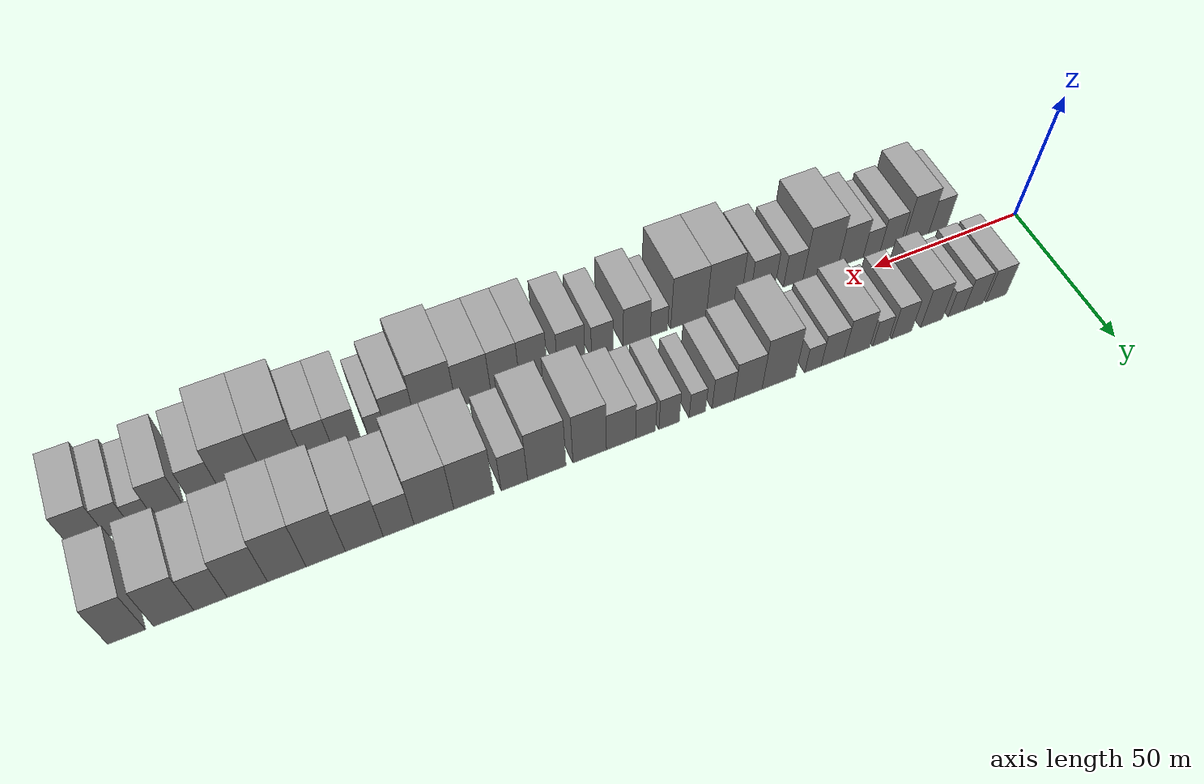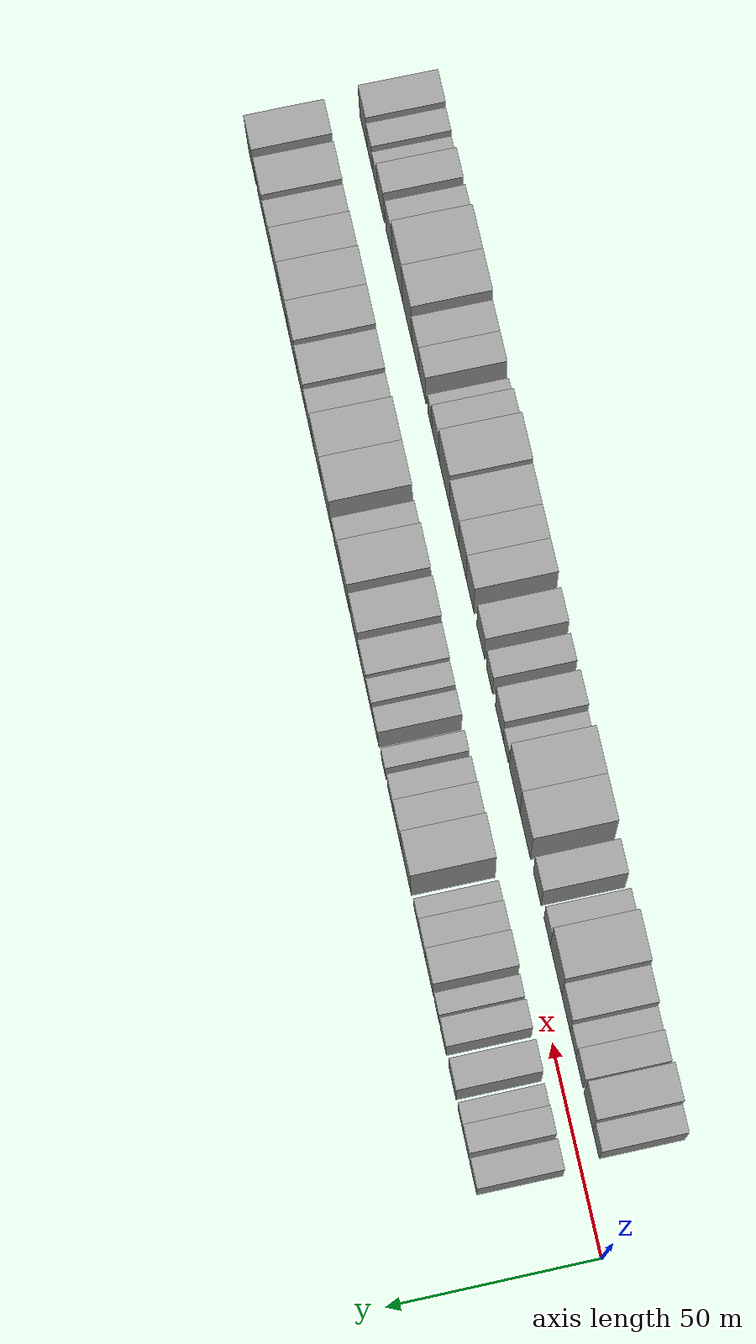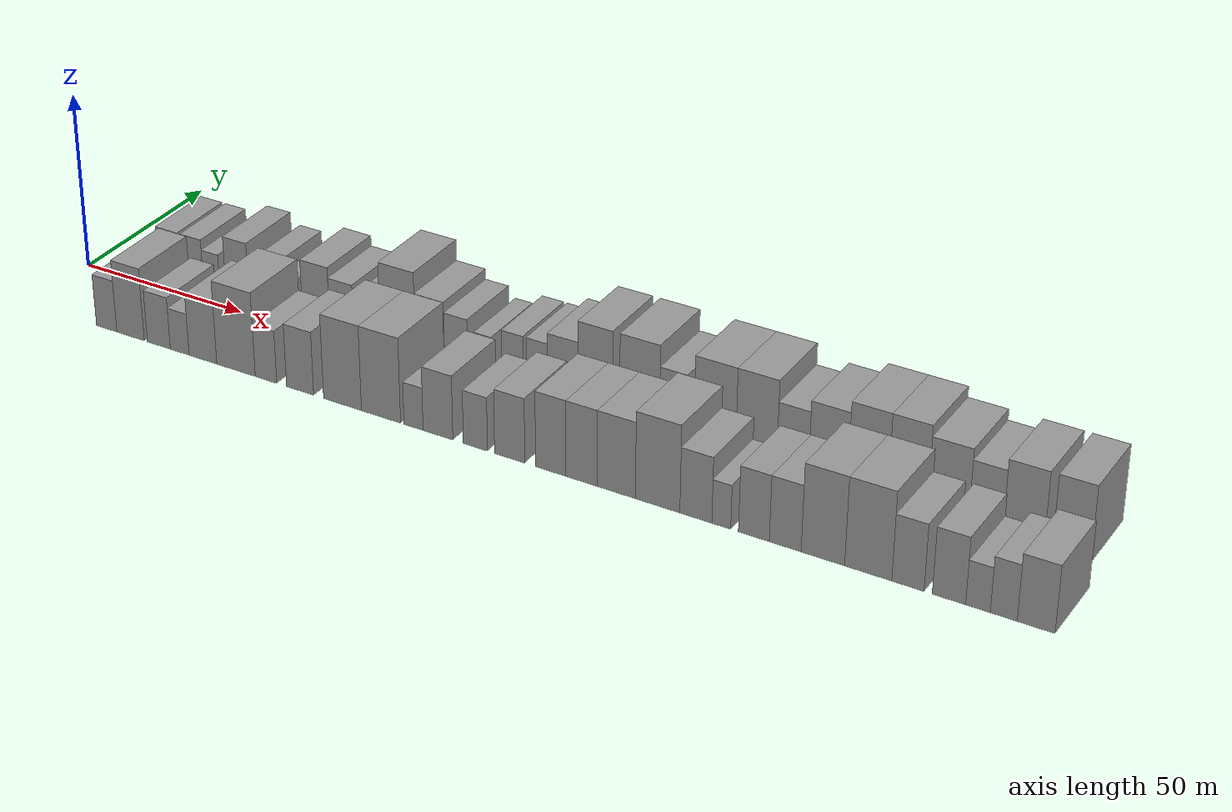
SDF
<sdf version="1.6">
 <world name="default">
  <scene>
   <sky><clouds><speed>12</speed></clouds></sky>
   <ambient>0.4 0.4 0.4 1</ambient>
   <background>0.7 0.7 0.7 1</background>
   <shadows>1</shadows>
  </scene>
  <gravity>0 0 -9.8066</gravity>
  <magnetic_field>6e-06 2.3e-05 -4.2e-05</magnetic_field>
  <physics default="0" name="default_physics" type="ode">
   <ode>
    <solver>
     <type>quick</type>
     <iters>10</iters>
     <sor>1.0</sor>
     <use_dynamic_moi_rescaling>0</use_dynamic_moi_rescaling>
    </solver>
    <constraints>
     <cfm>0</cfm>
     <erp>0.2</erp>
     <contact_max_correcting_vel>100</contact_max_correcting_vel>
     <contact_surface_layer>0.001</contact_surface_layer>
    </constraints>
   </ode>
   <max_step_size>0.004</max_step_size>
   <real_time_factor>1</real_time_factor>
   <real_time_update_rate>250</real_time_update_rate>
  </physics>
  <light name="sun" type="directional">
   <pose>0 0 10 0 0 0</pose>
   <diffuse>0.8 0.8 0.8 1</diffuse>
   <specular>0.2 0.2 0.2 1</specular>
   <attenuation>
    <range>1000</range>
    <constant>0.9</constant>
    <linear>0.01</linear>
    <quadratic>0.001</quadratic>
   </attenuation>
   <direction>-0.5 0.1 -0.9</direction>
  </light>
  <model name="building_1">
   <static>1</static>
   <pose>23.5360 14.5000 0 0.000000 0.000000 1.570796</pose>
   <link name="link">
    <pose>0 0 7.50 0 0 0</pose>
    <collision name="collision"><geometry><box><size>20.0000 7.0721 15.0000</size></box></geometry></collision>
    <visual name="visual">
     <cast_shadows>0</cast_shadows>
     <geometry><box><size>20.0000 7.0721 15.0000</size></box></geometry>
     <material>
      <script>
       <uri>model://grey_wall/materials/scripts</uri>
       <uri>model://grey_wall/materials/textures</uri>
       <name>vrc/grey_wall</name>
      </script>
     </material>
    </visual>
   </link>
  </model>
  <model name="building_2">
   <static>1</static>
   <pose>31.3836 14.5000 0 0.000000 0.000000 1.570796</pose>
   <link name="link">
    <pose>0 0 7.50 0 0 0</pose>
    <collision name="collision"><geometry><box><size>20.0000 6.6231 15.0000</size></box></geometry></collision>
    <visual name="visual">
     <cast_shadows>0</cast_shadows>
     <geometry><box><size>20.0000 6.6231 15.0000</size></box></geometry>
     <material>
      <script>
       <uri>model://grey_wall/materials/scripts</uri>
       <uri>model://grey_wall/materials/textures</uri>
       <name>vrc/grey_wall</name>
      </script>
     </material>
    </visual>
   </link>
  </model>
  <model name="building_3">
   <static>1</static>
   <pose>37.3667 14.5000 0 0.000000 0.000000 1.570796</pose>
   <link name="link">
    <pose>0 0 6.00 0 0 0</pose>
    <collision name="collision"><geometry><box><size>20.0000 5.3431 12.0000</size></box></geometry></collision>
    <visual name="visual">
     <cast_shadows>0</cast_shadows>
     <geometry><box><size>20.0000 5.3431 12.0000</size></box></geometry>
     <material>
      <script>
       <uri>model://grey_wall/materials/scripts</uri>
       <uri>model://grey_wall/materials/textures</uri>
       <name>vrc/grey_wall</name>
      </script>
     </material>
    </visual>
   </link>
  </model>
  <model name="building_4">
   <static>1</static>
   <pose>45.7312 14.5000 0 0.000000 0.000000 1.570796</pose>
   <link name="link">
    <pose>0 0 9.00 0 0 0</pose>
    <collision name="collision"><geometry><box><size>20.0000 7.3858 18.0000</size></box></geometry></collision>
    <visual name="visual">
     <cast_shadows>0</cast_shadows>
     <geometry><box><size>20.0000 7.3858 18.0000</size></box></geometry>
     <material>
      <script>
       <uri>model://grey_wall/materials/scripts</uri>
       <uri>model://grey_wall/materials/textures</uri>
       <name>vrc/grey_wall</name>
      </script>
     </material>
    </visual>
   </link>
  </model>
  <model name="building_5">
   <static>1</static>
   <pose>55.7922 14.5000 0 0.000000 0.000000 1.570796</pose>
   <link name="link">
    <pose>0 0 7.50 0 0 0</pose>
    <collision name="collision"><geometry><box><size>20.0000 6.7362 15.0000</size></box></geometry></collision>
    <visual name="visual">
     <cast_shadows>0</cast_shadows>
     <geometry><box><size>20.0000 6.7362 15.0000</size></box></geometry>
     <material>
      <script>
       <uri>model://grey_wall/materials/scripts</uri>
       <uri>model://grey_wall/materials/textures</uri>
       <name>vrc/grey_wall</name>
      </script>
     </material>
    </visual>
   </link>
  </model>
  <model name="building_6">
   <static>1</static>
   <pose>62.8061 14.5000 0 0.000000 0.000000 1.570796</pose>
   <link name="link">
    <pose>0 0 6.00 0 0 0</pose>
    <collision name="collision"><geometry><box><size>20.0000 5.2915 12.0000</size></box></geometry></collision>
    <visual name="visual">
     <cast_shadows>0</cast_shadows>
     <geometry><box><size>20.0000 5.2915 12.0000</size></box></geometry>
     <material>
      <script>
       <uri>model://grey_wall/materials/scripts</uri>
       <uri>model://grey_wall/materials/textures</uri>
       <name>vrc/grey_wall</name>
      </script>
     </material>
    </visual>
   </link>
  </model>
  <model name="building_7">
   <static>1</static>
   <pose>70.6745 14.5000 0 0.000000 0.000000 1.570796</pose>
   <link name="link">
    <pose>0 0 9.00 0 0 0</pose>
    <collision name="collision"><geometry><box><size>20.0000 8.4452 18.0000</size></box></geometry></collision>
    <visual name="visual">
     <cast_shadows>0</cast_shadows>
     <geometry><box><size>20.0000 8.4452 18.0000</size></box></geometry>
     <material>
      <script>
       <uri>model://grey_wall/materials/scripts</uri>
       <uri>model://grey_wall/materials/textures</uri>
       <name>vrc/grey_wall</name>
      </script>
     </material>
    </visual>
   </link>
  </model>
  <model name="building_8">
   <static>1</static>
   <pose>78.6163 14.5000 0 0.000000 0.000000 1.570796</pose>
   <link name="link">
    <pose>0 0 7.50 0 0 0</pose>
    <collision name="collision"><geometry><box><size>20.0000 7.4385 15.0000</size></box></geometry></collision>
    <visual name="visual">
     <cast_shadows>0</cast_shadows>
     <geometry><box><size>20.0000 7.4385 15.0000</size></box></geometry>
     <material>
      <script>
       <uri>model://grey_wall/materials/scripts</uri>
       <uri>model://grey_wall/materials/textures</uri>
       <name>vrc/grey_wall</name>
      </script>
     </material>
    </visual>
   </link>
  </model>
  <model name="building_9">
   <static>1</static>
   <pose>84.9727 14.5000 0 0.000000 0.000000 1.570796</pose>
   <link name="link">
    <pose>0 0 6.00 0 0 0</pose>
    <collision name="collision"><geometry><box><size>20.0000 5.2742 12.0000</size></box></geometry></collision>
    <visual name="visual">
     <cast_shadows>0</cast_shadows>
     <geometry><box><size>20.0000 5.2742 12.0000</size></box></geometry>
     <material>
      <script>
       <uri>model://grey_wall/materials/scripts</uri>
       <uri>model://grey_wall/materials/textures</uri>
       <name>vrc/grey_wall</name>
      </script>
     </material>
    </visual>
   </link>
  </model>
  <model name="building_10">
   <static>1</static>
   <pose>95.9108 14.5000 0 0.000000 0.000000 1.570796</pose>
   <link name="link">
    <pose>0 0 12.00 0 0 0</pose>
    <collision name="collision"><geometry><box><size>20.0000 10.6020 24.0000</size></box></geometry></collision>
    <visual name="visual">
     <cast_shadows>0</cast_shadows>
     <geometry><box><size>20.0000 10.6020 24.0000</size></box></geometry>
     <material>
      <script>
       <uri>model://grey_wall/materials/scripts</uri>
       <uri>model://grey_wall/materials/textures</uri>
       <name>vrc/grey_wall</name>
      </script>
     </material>
    </visual>
   </link>
  </model>
  <model name="building_11">
   <static>1</static>
   <pose>105.5941 14.5000 0 0.000000 0.000000 1.570796</pose>
   <link name="link">
    <pose>0 0 9.00 0 0 0</pose>
    <collision name="collision"><geometry><box><size>20.0000 8.7647 18.0000</size></box></geometry></collision>
    <visual name="visual">
     <cast_shadows>0</cast_shadows>
     <geometry><box><size>20.0000 8.7647 18.0000</size></box></geometry>
     <material>
      <script>
       <uri>model://grey_wall/materials/scripts</uri>
       <uri>model://grey_wall/materials/textures</uri>
       <name>vrc/grey_wall</name>
      </script>
     </material>
    </visual>
   </link>
  </model>
  <model name="building_12">
   <static>1</static>
   <pose>113.4084 14.5000 0 0.000000 0.000000 1.570796</pose>
   <link name="link">
    <pose>0 0 7.50 0 0 0</pose>
    <collision name="collision"><geometry><box><size>20.0000 6.8639 15.0000</size></box></geometry></collision>
    <visual name="visual">
     <cast_shadows>0</cast_shadows>
     <geometry><box><size>20.0000 6.8639 15.0000</size></box></geometry>
     <material>
      <script>
       <uri>model://grey_wall/materials/scripts</uri>
       <uri>model://grey_wall/materials/textures</uri>
       <name>vrc/grey_wall</name>
      </script>
     </material>
    </visual>
   </link>
  </model>
  <model name="building_13">
   <static>1</static>
   <pose>121.3607 14.5000 0 0.000000 0.000000 1.570796</pose>
   <link name="link">
    <pose>0 0 6.00 0 0 0</pose>
    <collision name="collision"><geometry><box><size>20.0000 5.0408 12.0000</size></box></geometry></collision>
    <visual name="visual">
     <cast_shadows>0</cast_shadows>
     <geometry><box><size>20.0000 5.0408 12.0000</size></box></geometry>
     <material>
      <script>
       <uri>model://grey_wall/materials/scripts</uri>
       <uri>model://grey_wall/materials/textures</uri>
       <name>vrc/grey_wall</name>
      </script>
     </material>
    </visual>
   </link>
  </model>
  <model name="building_14">
   <static>1</static>
   <pose>129.9861 14.5000 0 0.000000 0.000000 1.570796</pose>
   <link name="link">
    <pose>0 0 7.50 0 0 0</pose>
    <collision name="collision"><geometry><box><size>20.0000 6.2101 15.0000</size></box></geometry></collision>
    <visual name="visual">
     <cast_shadows>0</cast_shadows>
     <geometry><box><size>20.0000 6.2101 15.0000</size></box></geometry>
     <material>
      <script>
       <uri>model://grey_wall/materials/scripts</uri>
       <uri>model://grey_wall/materials/textures</uri>
       <name>vrc/grey_wall</name>
      </script>
     </material>
    </visual>
   </link>
  </model>
  <model name="building_15">
   <static>1</static>
   <pose>137.1040 14.5000 0 0.000000 0.000000 1.570796</pose>
   <link name="link">
    <pose>0 0 7.50 0 0 0</pose>
    <collision name="collision"><geometry><box><size>20.0000 6.0256 15.0000</size></box></geometry></collision>
    <visual name="visual">
     <cast_shadows>0</cast_shadows>
     <geometry><box><size>20.0000 6.0256 15.0000</size></box></geometry>
     <material>
      <script>
       <uri>model://grey_wall/materials/scripts</uri>
       <uri>model://grey_wall/materials/textures</uri>
       <name>vrc/grey_wall</name>
      </script>
     </material>
    </visual>
   </link>
  </model>
  <model name="building_16">
   <static>1</static>
   <pose>144.4497 14.5000 0 0.000000 0.000000 1.570796</pose>
   <link name="link">
    <pose>0 0 9.00 0 0 0</pose>
    <collision name="collision"><geometry><box><size>20.0000 8.6659 18.0000</size></box></geometry></collision>
    <visual name="visual">
     <cast_shadows>0</cast_shadows>
     <geometry><box><size>20.0000 8.6659 18.0000</size></box></geometry>
     <material>
      <script>
       <uri>model://grey_wall/materials/scripts</uri>
       <uri>model://grey_wall/materials/textures</uri>
       <name>vrc/grey_wall</name>
      </script>
     </material>
    </visual>
   </link>
  </model>
  <model name="building_17">
   <static>1</static>
   <pose>153.7060 14.5000 0 0.000000 0.000000 1.570796</pose>
   <link name="link">
    <pose>0 0 12.00 0 0 0</pose>
    <collision name="collision"><geometry><box><size>20.0000 9.8466 24.0000</size></box></geometry></collision>
    <visual name="visual">
     <cast_shadows>0</cast_shadows>
     <geometry><box><size>20.0000 9.8466 24.0000</size></box></geometry>
     <material>
      <script>
       <uri>model://grey_wall/materials/scripts</uri>
       <uri>model://grey_wall/materials/textures</uri>
       <name>vrc/grey_wall</name>
      </script>
     </material>
    </visual>
   </link>
  </model>
  <model name="building_18">
   <static>1</static>
   <pose>166.1829 14.5000 0 0.000000 0.000000 1.570796</pose>
   <link name="link">
    <pose>0 0 12.00 0 0 0</pose>
    <collision name="collision"><geometry><box><size>20.0000 11.1072 24.0000</size></box></geometry></collision>
    <visual name="visual">
     <cast_shadows>0</cast_shadows>
     <geometry><box><size>20.0000 11.1072 24.0000</size></box></geometry>
     <material>
      <script>
       <uri>model://grey_wall/materials/scripts</uri>
       <uri>model://grey_wall/materials/textures</uri>
       <name>vrc/grey_wall</name>
      </script>
     </material>
    </visual>
   </link>
  </model>
  <model name="building_19">
   <static>1</static>
   <pose>175.5025 14.5000 0 0.000000 0.000000 1.570796</pose>
   <link name="link">
    <pose>0 0 9.00 0 0 0</pose>
    <collision name="collision"><geometry><box><size>20.0000 7.5320 18.0000</size></box></geometry></collision>
    <visual name="visual">
     <cast_shadows>0</cast_shadows>
     <geometry><box><size>20.0000 7.5320 18.0000</size></box></geometry>
     <material>
      <script>
       <uri>model://grey_wall/materials/scripts</uri>
       <uri>model://grey_wall/materials/textures</uri>
       <name>vrc/grey_wall</name>
      </script>
     </material>
    </visual>
   </link>
  </model>
  <model name="building_20">
   <static>1</static>
   <pose>186.9345 14.5000 0 0.000000 0.000000 1.570796</pose>
   <link name="link">
    <pose>0 0 12.00 0 0 0</pose>
    <collision name="collision"><geometry><box><size>20.0000 11.3319 24.0000</size></box></geometry></collision>
    <visual name="visual">
     <cast_shadows>0</cast_shadows>
     <geometry><box><size>20.0000 11.3319 24.0000</size></box></geometry>
     <material>
      <script>
       <uri>model://grey_wall/materials/scripts</uri>
       <uri>model://grey_wall/materials/textures</uri>
       <name>vrc/grey_wall</name>
      </script>
     </material>
    </visual>
   </link>
  </model>
  <model name="building_21">
   <static>1</static>
   <pose>198.1048 14.5000 0 0.000000 0.000000 1.570796</pose>
   <link name="link">
    <pose>0 0 12.00 0 0 0</pose>
    <collision name="collision"><geometry><box><size>20.0000 11.0089 24.0000</size></box></geometry></collision>
    <visual name="visual">
     <cast_shadows>0</cast_shadows>
     <geometry><box><size>20.0000 11.0089 24.0000</size></box></geometry>
     <material>
      <script>
       <uri>model://grey_wall/materials/scripts</uri>
       <uri>model://grey_wall/materials/textures</uri>
       <name>vrc/grey_wall</name>
      </script>
     </material>
    </visual>
   </link>
  </model>
  <model name="building_22">
   <static>1</static>
   <pose>207.8224 14.5000 0 0.000000 0.000000 1.570796</pose>
   <link name="link">
    <pose>0 0 9.00 0 0 0</pose>
    <collision name="collision"><geometry><box><size>20.0000 8.4262 18.0000</size></box></geometry></collision>
    <visual name="visual">
     <cast_shadows>0</cast_shadows>
     <geometry><box><size>20.0000 8.4262 18.0000</size></box></geometry>
     <material>
      <script>
       <uri>model://grey_wall/materials/scripts</uri>
       <uri>model://grey_wall/materials/textures</uri>
       <name>vrc/grey_wall</name>
      </script>
     </material>
    </visual>
   </link>
  </model>
  <model name="building_23">
   <static>1</static>
   <pose>217.1418 14.5000 0 0.000000 0.000000 1.570796</pose>
   <link name="link">
    <pose>0 0 10.50 0 0 0</pose>
    <collision name="collision"><geometry><box><size>20.0000 10.2126 21.0000</size></box></geometry></collision>
    <visual name="visual">
     <cast_shadows>0</cast_shadows>
     <geometry><box><size>20.0000 10.2126 21.0000</size></box></geometry>
     <material>
      <script>
       <uri>model://grey_wall/materials/scripts</uri>
       <uri>model://grey_wall/materials/textures</uri>
       <name>vrc/grey_wall</name>
      </script>
     </material>
    </visual>
   </link>
  </model>
  <model name="building_24">
   <static>1</static>
   <pose>227.4497 14.5000 0 0.000000 0.000000 1.570796</pose>
   <link name="link">
    <pose>0 0 12.00 0 0 0</pose>
    <collision name="collision"><geometry><box><size>20.0000 10.4031 24.0000</size></box></geometry></collision>
    <visual name="visual">
     <cast_shadows>0</cast_shadows>
     <geometry><box><size>20.0000 10.4031 24.0000</size></box></geometry>
     <material>
      <script>
       <uri>model://grey_wall/materials/scripts</uri>
       <uri>model://grey_wall/materials/textures</uri>
       <name>vrc/grey_wall</name>
      </script>
     </material>
    </visual>
   </link>
  </model>
  <model name="building_25">
   <static>1</static>
   <pose>237.7021 14.5000 0 0.000000 0.000000 1.570796</pose>
   <link name="link">
    <pose>0 0 12.00 0 0 0</pose>
    <collision name="collision"><geometry><box><size>20.0000 10.1017 24.0000</size></box></geometry></collision>
    <visual name="visual">
     <cast_shadows>0</cast_shadows>
     <geometry><box><size>20.0000 10.1017 24.0000</size></box></geometry>
     <material>
      <script>
       <uri>model://grey_wall/materials/scripts</uri>
       <uri>model://grey_wall/materials/textures</uri>
       <name>vrc/grey_wall</name>
      </script>
     </material>
    </visual>
   </link>
  </model>
  <model name="building_26">
   <static>1</static>
   <pose>247.9353 14.5000 0 0.000000 0.000000 1.570796</pose>
   <link name="link">
    <pose>0 0 10.50 0 0 0</pose>
    <collision name="collision"><geometry><box><size>20.0000 10.3646 21.0000</size></box></geometry></collision>
    <visual name="visual">
     <cast_shadows>0</cast_shadows>
     <geometry><box><size>20.0000 10.3646 21.0000</size></box></geometry>
     <material>
      <script>
       <uri>model://grey_wall/materials/scripts</uri>
       <uri>model://grey_wall/materials/textures</uri>
       <name>vrc/grey_wall</name>
      </script>
     </material>
    </visual>
   </link>
  </model>
  <model name="building_27">
   <static>1</static>
   <pose>257.3785 14.5000 0 0.000000 0.000000 1.570796</pose>
   <link name="link">
    <pose>0 0 9.00 0 0 0</pose>
    <collision name="collision"><geometry><box><size>20.0000 8.5219 18.0000</size></box></geometry></collision>
    <visual name="visual">
     <cast_shadows>0</cast_shadows>
     <geometry><box><size>20.0000 8.5219 18.0000</size></box></geometry>
     <material>
      <script>
       <uri>model://grey_wall/materials/scripts</uri>
       <uri>model://grey_wall/materials/textures</uri>
       <name>vrc/grey_wall</name>
      </script>
     </material>
    </visual>
   </link>
  </model>
  <model name="building_28">
   <static>1</static>
   <pose>266.7054 14.5000 0 0.000000 0.000000 1.570796</pose>
   <link name="link">
    <pose>0 0 10.50 0 0 0</pose>
    <collision name="collision"><geometry><box><size>20.0000 10.1320 21.0000</size></box></geometry></collision>
    <visual name="visual">
     <cast_shadows>0</cast_shadows>
     <geometry><box><size>20.0000 10.1320 21.0000</size></box></geometry>
     <material>
      <script>
       <uri>model://grey_wall/materials/scripts</uri>
       <uri>model://grey_wall/materials/textures</uri>
       <name>vrc/grey_wall</name>
      </script>
     </material>
    </visual>
   </link>
  </model>
  <model name="building_29">
   <static>1</static>
   <pose>278.4371 14.5000 0 0.000000 0.000000 1.570796</pose>
   <link name="link">
    <pose>0 0 10.50 0 0 0</pose>
    <collision name="collision"><geometry><box><size>20.0000 9.3315 21.0000</size></box></geometry></collision>
    <visual name="visual">
     <cast_shadows>0</cast_shadows>
     <geometry><box><size>20.0000 9.3315 21.0000</size></box></geometry>
     <material>
      <script>
       <uri>model://grey_wall/materials/scripts</uri>
       <uri>model://grey_wall/materials/textures</uri>
       <name>vrc/grey_wall</name>
      </script>
     </material>
    </visual>
   </link>
  </model>
  <model name="building_30">
   <static>1</static>
   <pose>25.2851 -14.5000 0 0.000000 0.000000 1.570796</pose>
   <link name="link">
    <pose>0 0 7.50 0 0 0</pose>
    <collision name="collision"><geometry><box><size>20.0000 6.5703 15.0000</size></box></geometry></collision>
    <visual name="visual">
     <cast_shadows>0</cast_shadows>
     <geometry><box><size>20.0000 6.5703 15.0000</size></box></geometry>
     <material>
      <script>
       <uri>model://grey_wall/materials/scripts</uri>
       <uri>model://grey_wall/materials/textures</uri>
       <name>vrc/grey_wall</name>
      </script>
     </material>
    </visual>
   </link>
  </model>
  <model name="building_31">
   <static>1</static>
   <pose>32.9898 -14.5000 0 0.000000 0.000000 1.570796</pose>
   <link name="link">
    <pose>0 0 10.50 0 0 0</pose>
    <collision name="collision"><geometry><box><size>20.0000 8.8391 21.0000</size></box></geometry></collision>
    <visual name="visual">
     <cast_shadows>0</cast_shadows>
     <geometry><box><size>20.0000 8.8391 21.0000</size></box></geometry>
     <material>
      <script>
       <uri>model://grey_wall/materials/scripts</uri>
       <uri>model://grey_wall/materials/textures</uri>
       <name>vrc/grey_wall</name>
      </script>
     </material>
    </visual>
   </link>
  </model>
  <model name="building_32">
   <static>1</static>
   <pose>42.0585 -14.5000 0 0.000000 0.000000 1.570796</pose>
   <link name="link">
    <pose>0 0 7.50 0 0 0</pose>
    <collision name="collision"><geometry><box><size>20.0000 7.2983 15.0000</size></box></geometry></collision>
    <visual name="visual">
     <cast_shadows>0</cast_shadows>
     <geometry><box><size>20.0000 7.2983 15.0000</size></box></geometry>
     <material>
      <script>
       <uri>model://grey_wall/materials/scripts</uri>
       <uri>model://grey_wall/materials/textures</uri>
       <name>vrc/grey_wall</name>
      </script>
     </material>
    </visual>
   </link>
  </model>
  <model name="building_33">
   <static>1</static>
   <pose>48.6739 -14.5000 0 0.000000 0.000000 1.570796</pose>
   <link name="link">
    <pose>0 0 6.00 0 0 0</pose>
    <collision name="collision"><geometry><box><size>20.0000 5.9326 12.0000</size></box></geometry></collision>
    <visual name="visual">
     <cast_shadows>0</cast_shadows>
     <geometry><box><size>20.0000 5.9326 12.0000</size></box></geometry>
     <material>
      <script>
       <uri>model://grey_wall/materials/scripts</uri>
       <uri>model://grey_wall/materials/textures</uri>
       <name>vrc/grey_wall</name>
      </script>
     </material>
    </visual>
   </link>
  </model>
  <model name="building_34">
   <static>1</static>
   <pose>55.9831 -14.5000 0 0.000000 0.000000 1.570796</pose>
   <link name="link">
    <pose>0 0 9.00 0 0 0</pose>
    <collision name="collision"><geometry><box><size>20.0000 8.6858 18.0000</size></box></geometry></collision>
    <visual name="visual">
     <cast_shadows>0</cast_shadows>
     <geometry><box><size>20.0000 8.6858 18.0000</size></box></geometry>
     <material>
      <script>
       <uri>model://grey_wall/materials/scripts</uri>
       <uri>model://grey_wall/materials/textures</uri>
       <name>vrc/grey_wall</name>
      </script>
     </material>
    </visual>
   </link>
  </model>
  <model name="building_35">
   <static>1</static>
   <pose>66.2816 -14.5000 0 0.000000 0.000000 1.570796</pose>
   <link name="link">
    <pose>0 0 12.00 0 0 0</pose>
    <collision name="collision"><geometry><box><size>20.0000 11.9111 24.0000</size></box></geometry></collision>
    <visual name="visual">
     <cast_shadows>0</cast_shadows>
     <geometry><box><size>20.0000 11.9111 24.0000</size></box></geometry>
     <material>
      <script>
       <uri>model://grey_wall/materials/scripts</uri>
       <uri>model://grey_wall/materials/textures</uri>
       <name>vrc/grey_wall</name>
      </script>
     </material>
    </visual>
   </link>
  </model>
  <model name="building_36">
   <static>1</static>
   <pose>75.5220 -14.5000 0 0.000000 0.000000 1.570796</pose>
   <link name="link">
    <pose>0 0 7.50 0 0 0</pose>
    <collision name="collision"><geometry><box><size>20.0000 6.5697 15.0000</size></box></geometry></collision>
    <visual name="visual">
     <cast_shadows>0</cast_shadows>
     <geometry><box><size>20.0000 6.5697 15.0000</size></box></geometry>
     <material>
      <script>
       <uri>model://grey_wall/materials/scripts</uri>
       <uri>model://grey_wall/materials/textures</uri>
       <name>vrc/grey_wall</name>
      </script>
     </material>
    </visual>
   </link>
  </model>
  <model name="building_37">
   <static>1</static>
   <pose>85.9011 -14.5000 0 0.000000 0.000000 1.570796</pose>
   <link name="link">
    <pose>0 0 9.00 0 0 0</pose>
    <collision name="collision"><geometry><box><size>20.0000 8.1885 18.0000</size></box></geometry></collision>
    <visual name="visual">
     <cast_shadows>0</cast_shadows>
     <geometry><box><size>20.0000 8.1885 18.0000</size></box></geometry>
     <material>
      <script>
       <uri>model://grey_wall/materials/scripts</uri>
       <uri>model://grey_wall/materials/textures</uri>
       <name>vrc/grey_wall</name>
      </script>
     </material>
    </visual>
   </link>
  </model>
  <model name="building_38">
   <static>1</static>
   <pose>98.6181 -14.5000 0 0.000000 0.000000 1.570796</pose>
   <link name="link">
    <pose>0 0 12.00 0 0 0</pose>
    <collision name="collision"><geometry><box><size>20.0000 11.2455 24.0000</size></box></geometry></collision>
    <visual name="visual">
     <cast_shadows>0</cast_shadows>
     <geometry><box><size>20.0000 11.2455 24.0000</size></box></geometry>
     <material>
      <script>
       <uri>model://grey_wall/materials/scripts</uri>
       <uri>model://grey_wall/materials/textures</uri>
       <name>vrc/grey_wall</name>
      </script>
     </material>
    </visual>
   </link>
  </model>
  <model name="building_39">
   <static>1</static>
   <pose>109.9862 -14.5000 0 0.000000 0.000000 1.570796</pose>
   <link name="link">
    <pose>0 0 12.00 0 0 0</pose>
    <collision name="collision"><geometry><box><size>20.0000 11.4906 24.0000</size></box></geometry></collision>
    <visual name="visual">
     <cast_shadows>0</cast_shadows>
     <geometry><box><size>20.0000 11.4906 24.0000</size></box></geometry>
     <material>
      <script>
       <uri>model://grey_wall/materials/scripts</uri>
       <uri>model://grey_wall/materials/textures</uri>
       <name>vrc/grey_wall</name>
      </script>
     </material>
    </visual>
   </link>
  </model>
  <model name="building_40">
   <static>1</static>
   <pose>119.5006 -14.5000 0 0.000000 0.000000 1.570796</pose>
   <link name="link">
    <pose>0 0 6.00 0 0 0</pose>
    <collision name="collision"><geometry><box><size>20.0000 5.5382 12.0000</size></box></geometry></collision>
    <visual name="visual">
     <cast_shadows>0</cast_shadows>
     <geometry><box><size>20.0000 5.5382 12.0000</size></box></geometry>
     <material>
      <script>
       <uri>model://grey_wall/materials/scripts</uri>
       <uri>model://grey_wall/materials/textures</uri>
       <name>vrc/grey_wall</name>
      </script>
     </material>
    </visual>
   </link>
  </model>
  <model name="building_41">
   <static>1</static>
   <pose>126.5416 -14.5000 0 0.000000 0.000000 1.570796</pose>
   <link name="link">
    <pose>0 0 9.00 0 0 0</pose>
    <collision name="collision"><geometry><box><size>20.0000 8.5438 18.0000</size></box></geometry></collision>
    <visual name="visual">
     <cast_shadows>0</cast_shadows>
     <geometry><box><size>20.0000 8.5438 18.0000</size></box></geometry>
     <material>
      <script>
       <uri>model://grey_wall/materials/scripts</uri>
       <uri>model://grey_wall/materials/textures</uri>
       <name>vrc/grey_wall</name>
      </script>
     </material>
    </visual>
   </link>
  </model>
  <model name="building_42">
   <static>1</static>
   <pose>137.2309 -14.5000 0 0.000000 0.000000 1.570796</pose>
   <link name="link">
    <pose>0 0 7.50 0 0 0</pose>
    <collision name="collision"><geometry><box><size>20.0000 6.8349 15.0000</size></box></geometry></collision>
    <visual name="visual">
     <cast_shadows>0</cast_shadows>
     <geometry><box><size>20.0000 6.8349 15.0000</size></box></geometry>
     <material>
      <script>
       <uri>model://grey_wall/materials/scripts</uri>
       <uri>model://grey_wall/materials/textures</uri>
       <name>vrc/grey_wall</name>
      </script>
     </material>
    </visual>
   </link>
  </model>
  <model name="building_43">
   <static>1</static>
   <pose>146.8795 -14.5000 0 0.000000 0.000000 1.570796</pose>
   <link name="link">
    <pose>0 0 9.00 0 0 0</pose>
    <collision name="collision"><geometry><box><size>20.0000 8.4623 18.0000</size></box></geometry></collision>
    <visual name="visual">
     <cast_shadows>0</cast_shadows>
     <geometry><box><size>20.0000 8.4623 18.0000</size></box></geometry>
     <material>
      <script>
       <uri>model://grey_wall/materials/scripts</uri>
       <uri>model://grey_wall/materials/textures</uri>
       <name>vrc/grey_wall</name>
      </script>
     </material>
    </visual>
   </link>
  </model>
  <model name="building_44">
   <static>1</static>
   <pose>158.3213 -14.5000 0 0.000000 0.000000 1.570796</pose>
   <link name="link">
    <pose>0 0 10.50 0 0 0</pose>
    <collision name="collision"><geometry><box><size>20.0000 8.4213 21.0000</size></box></geometry></collision>
    <visual name="visual">
     <cast_shadows>0</cast_shadows>
     <geometry><box><size>20.0000 8.4213 21.0000</size></box></geometry>
     <material>
      <script>
       <uri>model://grey_wall/materials/scripts</uri>
       <uri>model://grey_wall/materials/textures</uri>
       <name>vrc/grey_wall</name>
      </script>
     </material>
    </visual>
   </link>
  </model>
  <model name="building_45">
   <static>1</static>
   <pose>166.7952 -14.5000 0 0.000000 0.000000 1.570796</pose>
   <link name="link">
    <pose>0 0 10.50 0 0 0</pose>
    <collision name="collision"><geometry><box><size>20.0000 8.5264 21.0000</size></box></geometry></collision>
    <visual name="visual">
     <cast_shadows>0</cast_shadows>
     <geometry><box><size>20.0000 8.5264 21.0000</size></box></geometry>
     <material>
      <script>
       <uri>model://grey_wall/materials/scripts</uri>
       <uri>model://grey_wall/materials/textures</uri>
       <name>vrc/grey_wall</name>
      </script>
     </material>
    </visual>
   </link>
  </model>
  <model name="building_46">
   <static>1</static>
   <pose>176.2079 -14.5000 0 0.000000 0.000000 1.570796</pose>
   <link name="link">
    <pose>0 0 10.50 0 0 0</pose>
    <collision name="collision"><geometry><box><size>20.0000 10.2991 21.0000</size></box></geometry></collision>
    <visual name="visual">
     <cast_shadows>0</cast_shadows>
     <geometry><box><size>20.0000 10.2991 21.0000</size></box></geometry>
     <material>
      <script>
       <uri>model://grey_wall/materials/scripts</uri>
       <uri>model://grey_wall/materials/textures</uri>
       <name>vrc/grey_wall</name>
      </script>
     </material>
    </visual>
   </link>
  </model>
  <model name="building_47">
   <static>1</static>
   <pose>187.2960 -14.5000 0 0.000000 0.000000 1.570796</pose>
   <link name="link">
    <pose>0 0 12.00 0 0 0</pose>
    <collision name="collision"><geometry><box><size>20.0000 11.8770 24.0000</size></box></geometry></collision>
    <visual name="visual">
     <cast_shadows>0</cast_shadows>
     <geometry><box><size>20.0000 11.8770 24.0000</size></box></geometry>
     <material>
      <script>
       <uri>model://grey_wall/materials/scripts</uri>
       <uri>model://grey_wall/materials/textures</uri>
       <name>vrc/grey_wall</name>
      </script>
     </material>
    </visual>
   </link>
  </model>
  <model name="building_48">
   <static>1</static>
   <pose>197.4349 -14.5000 0 0.000000 0.000000 1.570796</pose>
   <link name="link">
    <pose>0 0 9.00 0 0 0</pose>
    <collision name="collision"><geometry><box><size>20.0000 8.4007 18.0000</size></box></geometry></collision>
    <visual name="visual">
     <cast_shadows>0</cast_shadows>
     <geometry><box><size>20.0000 8.4007 18.0000</size></box></geometry>
     <material>
      <script>
       <uri>model://grey_wall/materials/scripts</uri>
       <uri>model://grey_wall/materials/textures</uri>
       <name>vrc/grey_wall</name>
      </script>
     </material>
    </visual>
   </link>
  </model>
  <model name="building_49">
   <static>1</static>
   <pose>204.0975 -14.5000 0 0.000000 0.000000 1.570796</pose>
   <link name="link">
    <pose>0 0 6.00 0 0 0</pose>
    <collision name="collision"><geometry><box><size>20.0000 4.9245 12.0000</size></box></geometry></collision>
    <visual name="visual">
     <cast_shadows>0</cast_shadows>
     <geometry><box><size>20.0000 4.9245 12.0000</size></box></geometry>
     <material>
      <script>
       <uri>model://grey_wall/materials/scripts</uri>
       <uri>model://grey_wall/materials/textures</uri>
       <name>vrc/grey_wall</name>
      </script>
     </material>
    </visual>
   </link>
  </model>
  <model name="building_50">
   <static>1</static>
   <pose>212.5318 -14.5000 0 0.000000 0.000000 1.570796</pose>
   <link name="link">
    <pose>0 0 9.00 0 0 0</pose>
    <collision name="collision"><geometry><box><size>20.0000 7.9440 18.0000</size></box></geometry></collision>
    <visual name="visual">
     <cast_shadows>0</cast_shadows>
     <geometry><box><size>20.0000 7.9440 18.0000</size></box></geometry>
     <material>
      <script>
       <uri>model://grey_wall/materials/scripts</uri>
       <uri>model://grey_wall/materials/textures</uri>
       <name>vrc/grey_wall</name>
      </script>
     </material>
    </visual>
   </link>
  </model>
  <model name="building_51">
   <static>1</static>
   <pose>220.5605 -14.5000 0 0.000000 0.000000 1.570796</pose>
   <link name="link">
    <pose>0 0 9.00 0 0 0</pose>
    <collision name="collision"><geometry><box><size>20.0000 8.1135 18.0000</size></box></geometry></collision>
    <visual name="visual">
     <cast_shadows>0</cast_shadows>
     <geometry><box><size>20.0000 8.1135 18.0000</size></box></geometry>
     <material>
      <script>
       <uri>model://grey_wall/materials/scripts</uri>
       <uri>model://grey_wall/materials/textures</uri>
       <name>vrc/grey_wall</name>
      </script>
     </material>
    </visual>
   </link>
  </model>
  <model name="building_52">
   <static>1</static>
   <pose>230.0995 -14.5000 0 0.000000 0.000000 1.570796</pose>
   <link name="link">
    <pose>0 0 12.00 0 0 0</pose>
    <collision name="collision"><geometry><box><size>20.0000 10.9644 24.0000</size></box></geometry></collision>
    <visual name="visual">
     <cast_shadows>0</cast_shadows>
     <geometry><box><size>20.0000 10.9644 24.0000</size></box></geometry>
     <material>
      <script>
       <uri>model://grey_wall/materials/scripts</uri>
       <uri>model://grey_wall/materials/textures</uri>
       <name>vrc/grey_wall</name>
      </script>
     </material>
    </visual>
   </link>
  </model>
  <model name="building_53">
   <static>1</static>
   <pose>241.4222 -14.5000 0 0.000000 0.000000 1.570796</pose>
   <link name="link">
    <pose>0 0 12.00 0 0 0</pose>
    <collision name="collision"><geometry><box><size>20.0000 11.6809 24.0000</size></box></geometry></collision>
    <visual name="visual">
     <cast_shadows>0</cast_shadows>
     <geometry><box><size>20.0000 11.6809 24.0000</size></box></geometry>
     <material>
      <script>
       <uri>model://grey_wall/materials/scripts</uri>
       <uri>model://grey_wall/materials/textures</uri>
       <name>vrc/grey_wall</name>
      </script>
     </material>
    </visual>
   </link>
  </model>
  <model name="building_54">
   <static>1</static>
   <pose>251.2162 -14.5000 0 0.000000 0.000000 1.570796</pose>
   <link name="link">
    <pose>0 0 9.00 0 0 0</pose>
    <collision name="collision"><geometry><box><size>20.0000 7.9072 18.0000</size></box></geometry></collision>
    <visual name="visual">
     <cast_shadows>0</cast_shadows>
     <geometry><box><size>20.0000 7.9072 18.0000</size></box></geometry>
     <material>
      <script>
       <uri>model://grey_wall/materials/scripts</uri>
       <uri>model://grey_wall/materials/textures</uri>
       <name>vrc/grey_wall</name>
      </script>
     </material>
    </visual>
   </link>
  </model>
  <model name="building_55">
   <static>1</static>
   <pose>261.1863 -14.5000 0 0.000000 0.000000 1.570796</pose>
   <link name="link">
    <pose>0 0 9.00 0 0 0</pose>
    <collision name="collision"><geometry><box><size>20.0000 8.0328 18.0000</size></box></geometry></collision>
    <visual name="visual">
     <cast_shadows>0</cast_shadows>
     <geometry><box><size>20.0000 8.0328 18.0000</size></box></geometry>
     <material>
      <script>
       <uri>model://grey_wall/materials/scripts</uri>
       <uri>model://grey_wall/materials/textures</uri>
       <name>vrc/grey_wall</name>
      </script>
     </material>
    </visual>
   </link>
  </model>
  <model name="building_56">
   <static>1</static>
   <pose>268.1549 -14.5000 0 0.000000 0.000000 1.570796</pose>
   <link name="link">
    <pose>0 0 6.00 0 0 0</pose>
    <collision name="collision"><geometry><box><size>20.0000 5.9045 12.0000</size></box></geometry></collision>
    <visual name="visual">
     <cast_shadows>0</cast_shadows>
     <geometry><box><size>20.0000 5.9045 12.0000</size></box></geometry>
     <material>
      <script>
       <uri>model://grey_wall/materials/scripts</uri>
       <uri>model://grey_wall/materials/textures</uri>
       <name>vrc/grey_wall</name>
      </script>
     </material>
    </visual>
   </link>
  </model>
  <model name="building_57">
   <static>1</static>
   <pose>274.2983 -14.5000 0 0.000000 0.000000 1.570796</pose>
   <link name="link">
    <pose>0 0 7.50 0 0 0</pose>
    <collision name="collision"><geometry><box><size>20.0000 6.3822 15.0000</size></box></geometry></collision>
    <visual name="visual">
     <cast_shadows>0</cast_shadows>
     <geometry><box><size>20.0000 6.3822 15.0000</size></box></geometry>
     <material>
      <script>
       <uri>model://grey_wall/materials/scripts</uri>
       <uri>model://grey_wall/materials/textures</uri>
       <name>vrc/grey_wall</name>
      </script>
     </material>
    </visual>
   </link>
  </model>
  <model name="building_58">
   <static>1</static>
   <pose>281.9444 -14.5000 0 0.000000 0.000000 1.570796</pose>
   <link name="link">
    <pose>0 0 9.00 0 0 0</pose>
    <collision name="collision"><geometry><box><size>20.0000 8.9100 18.0000</size></box></geometry></collision>
    <visual name="visual">
     <cast_shadows>0</cast_shadows>
     <geometry><box><size>20.0000 8.9100 18.0000</size></box></geometry>
     <material>
      <script>
       <uri>model://grey_wall/materials/scripts</uri>
       <uri>model://grey_wall/materials/textures</uri>
       <name>vrc/grey_wall</name>
      </script>
     </material>
    </visual>
   </link>
  </model>
 </world>
</sdf>
